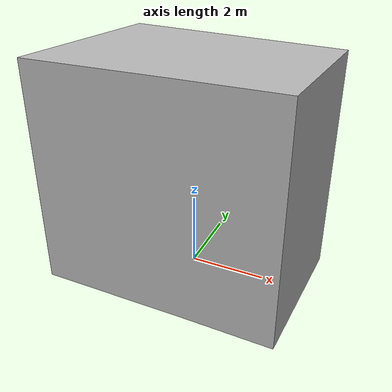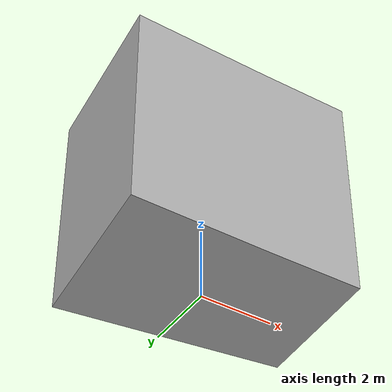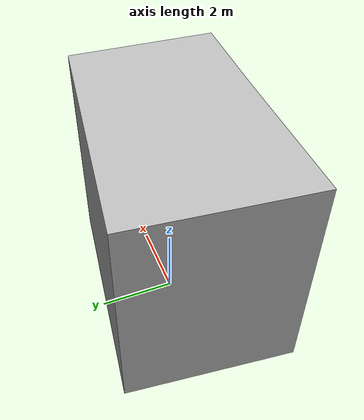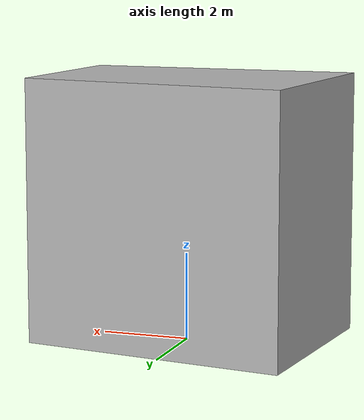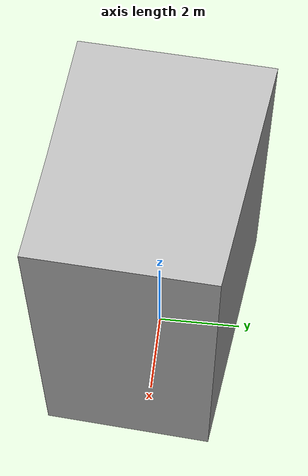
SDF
<?xml version="1.0" ?>
<sdf version="1.7">
  <model name="building_7260_assumed_a_ruinas">
    <static>true</static>
    <link name="building_link">
      <visual name="building_visual">
        <geometry>
          <mesh>
            <uri>model://building_7260_assumed_a_ruinas/meshes/construction_7260_assumed_A_Ruinas_h6m.obj</uri>
          </mesh>
        </geometry>
      </visual>
    <collision name="building_collision">
      <geometry>
        <mesh>
          <uri>model://building_7260_assumed_a_ruinas/meshes/construction_7260_assumed_A_Ruinas_h6m.obj</uri>
        </mesh>
      </geometry>
    </collision>
    </link>
  </model>
</sdf>
